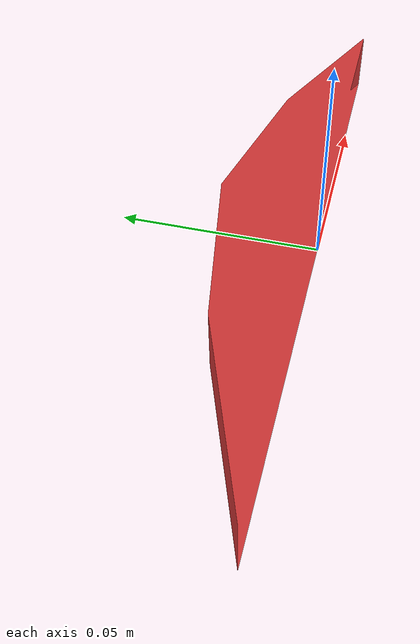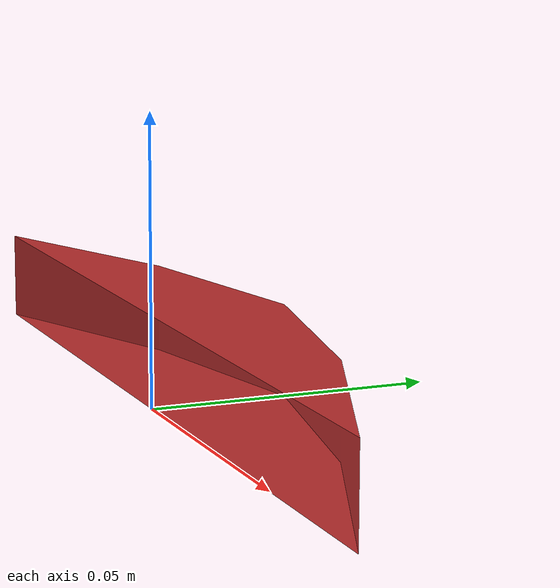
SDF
<?xml version="1.0"?>
<sdf version="1.7">
  <model name="banana_variant">
    <link name="banana_variant_link">
      <inertial>
        <mass>0.5</mass>
        <inertia>
          <ixx>0.002</ixx>
          <iyy>0.012</iyy>
          <izz>0.012</izz>
          <ixy>0.0</ixy>
          <ixz>0.0</ixz>
          <iyz>0.0</iyz>
        </inertia>
      </inertial>
      <visual name="banana_variant_visual">
        <geometry>
          <mesh>
            <uri>banana.obj</uri>
            <scale>0.08 0.08 0.08</scale>
          </mesh>
        </geometry>
        <material>
          <diffuse>0.8 0.2 0.2 1</diffuse>
          <ambient>0.3 0.1 0.1 1</ambient>
        </material>
      </visual>
    </link>
  </model>
</sdf>
